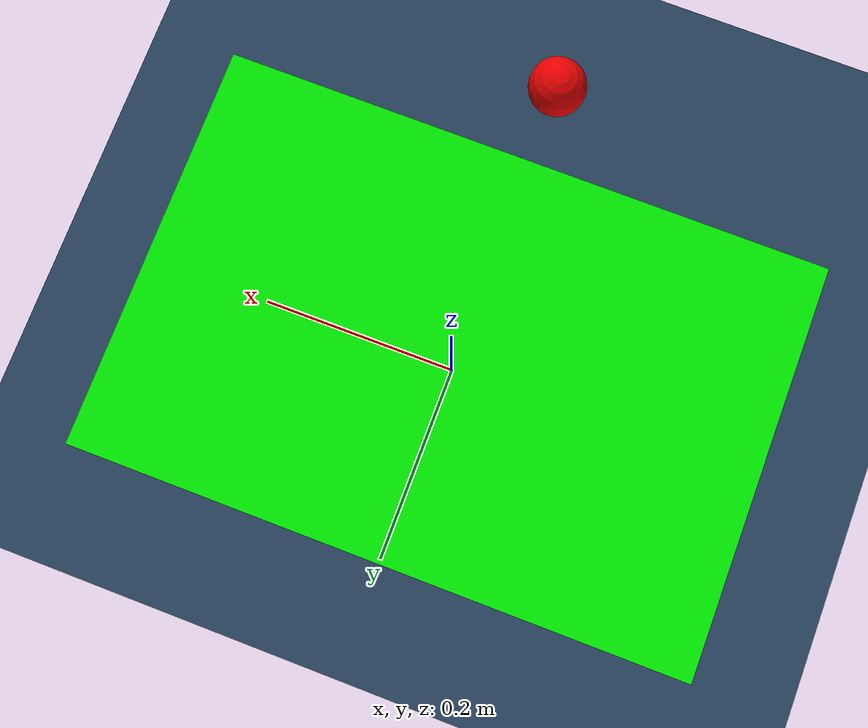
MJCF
<mujoco>
  <!-- Coarse physics -->
  <option timestep="0.01" iterations="1" ls_iterations="4"/>

  <!-- Texture assets -->
  <asset>
    <texture type="skybox" builtin="gradient" rgb1="0.3 0.5 0.7" rgb2="0 0 0" width="512" height="3072"/>
    <texture type="2d" name="groundplane" builtin="checker" mark="edge" rgb1="0.2 0.3 0.4" rgb2="0.1 0.2 0.3"
      markrgb="0.8 0.8 0.8" width="300" height="300"/>
    <material name="groundplane" texture="groundplane" texuniform="true" texrepeat="5 5" reflectance="0.2"/>
  </asset>

  <worldbody>
    <!-- Lighting -->
    <light diffuse=".5 .5 .5" pos="0 0 3" dir="0 0 -1"/>

    <!-- Floor (visual only) -->
    <geom name="floor" size="0 0 .125" type="plane" material="groundplane" contype="0" conaffinity="0"/>

    <!-- Block -->
    <body pos="0 0 0.05">
      <joint type="slide" axis="1 0 0" frictionloss="100.0"/>
      <joint type="slide" axis="0 1 0" frictionloss="100.0"/>
      <joint type="hinge" axis="0 0 1" frictionloss="10.0"/>
      <geom type="box" size=".3 .2 .05" rgba="0 0.9 0 1" mass="0.01"/>
    </body>

    <!-- Pusher -->
    <body pos="0.0 -0.3 0.05">
      <joint name="pusher_x" type="slide" axis="1 0 0"/>
      <joint name="pusher_y" type="slide" axis="0 1 0"/>
      <geom type="sphere" size=".03" rgba="0.9 0 0 1"/>
    </body>

  </worldbody>

  <!-- Position actuators for the pusher-->
   <actuator>
     <position name="pusher_x" joint="pusher_x" kp="10" dampratio="1" ctrllimited="true" ctrlrange="-1.5 1.5"/>
     <position name="pusher_y" joint="pusher_y" kp="10" dampratio="1" ctrllimited="true" ctrlrange="-1.5 1.5"/>
   </actuator>
</mujoco>
